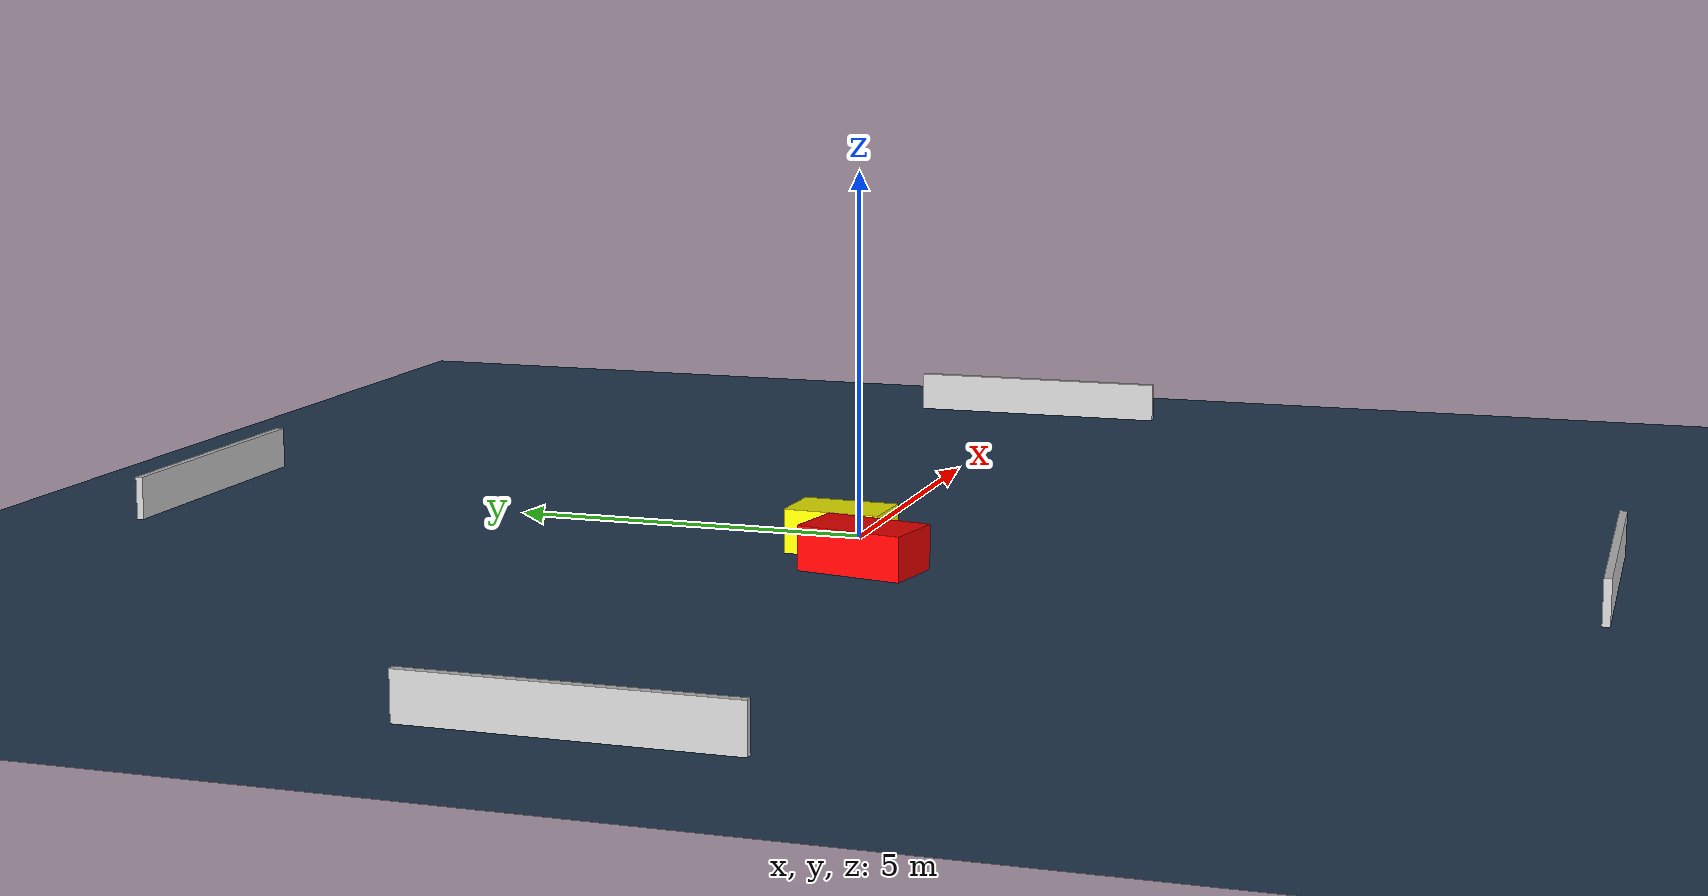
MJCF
<?xml version="1.0" ?>
<mujoco model="generated_environment">
  <option timestep="0.01" integrator="RK4" cone="elliptic"/>
  <default>
    <geom density="1"/>
  </default>
  <asset>
    <texture builtin="gradient" height="3072" name="skybox" rgb1="0.3 0.5 0.7" rgb2="0 0 0" type="skybox" width="512"/>
    <texture builtin="checker" height="300" name="groundplane" rgb1="0.2 0.3 0.4" rgb2="0.1 0.2 0.3" type="2d" width="300"/>
    <material name="groundplane" reflectance="0.2" texrepeat="5 5" texture="groundplane"/>
  </asset>
  <worldbody>
    <light dir="0 0 -1" directional="true" pos="0 0 1.5"/>
    <geom condim="3" friction="0.5 0.005 0.001" material="groundplane" name="floor" pos="0 0 0" size="0 0 0.05" type="plane"/>
    <body name="walls">
      <geom name="wall_1" condim="4" pos="-10.0 0.0 0.3" rgba="0.800000011920929 0.800000011920929 0.800000011920929 1.0" size="0.05 2.0 0.3" type="box"/>
      <geom name="wall_2" condim="4" pos="10.0 0.0 0.3" rgba="0.800000011920929 0.800000011920929 0.800000011920929 1.0" size="0.05 2.0 0.3" type="box"/>
      <geom name="wall_3" condim="4" pos="0.0 -10.0 0.3" rgba="0.800000011920929 0.800000011920929 0.800000011920929 1.0" size="2.0 0.05 0.3" type="box"/>
      <geom name="wall_4" condim="4" pos="0.0 10.0 0.3" rgba="0.800000011920929 0.800000011920929 0.800000011920929 1.0" size="2.0 0.05 0.3" type="box"/>
    </body>
    <body name="robot">
      <joint name="joint_x" type="slide" pos="0 0 0" axis="1 0 0"/>
      <joint name="joint_y" type="slide" pos="0 0 0" axis="0 1 0"/>
      <geom name="robot" type="cylinder" pos="0.0 0.0 0.2" size="0.2 0.2 0.0" mass="5.0" friction="1.0 0.005 0.0001" condim="4" rgba="1.0 1.0 0.0 1.0"/>
    </body>
    <body name="obstacle_1_movable">
      <geom name="obstacle_1_movable" condim="4" pos="-0.8751439249535695 -0.018719297457196426 0.3" euler="0 0 87.7677116878809" friction="0.0 0.005 0.001" rgba="1.0 1.0 0.0 1.0" size="0.661831999544351 0.4143790750584889 0.3" type="box" mass="0.1"/>
      <joint type="free"/>
    </body>
    <body name="obstacle_2_static">
      <geom name="obstacle_2_static" condim="4" pos="-1.8655886341930668 -0.6440713323505365 0.3" euler="0 0 169.25538587809092" friction="0.0 0.005 0.001" rgba="1.0 0.0 0.0 1.0" size="0.4375288804608971 0.7437727377983889 0.3" type="box"/>
    </body>
  </worldbody>
  <actuator>
    <motor name="actuator_x" joint="joint_x" gear="1" ctrlrange="-1 1"/>
    <motor name="actuator_y" joint="joint_y" gear="1" ctrlrange="-1 1"/>
  </actuator>
</mujoco>
